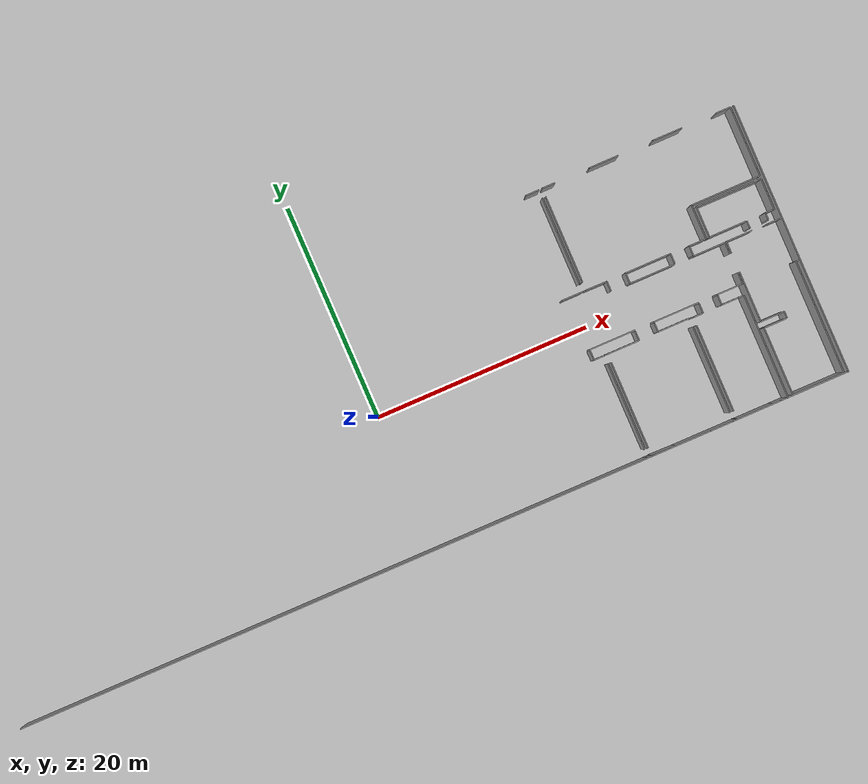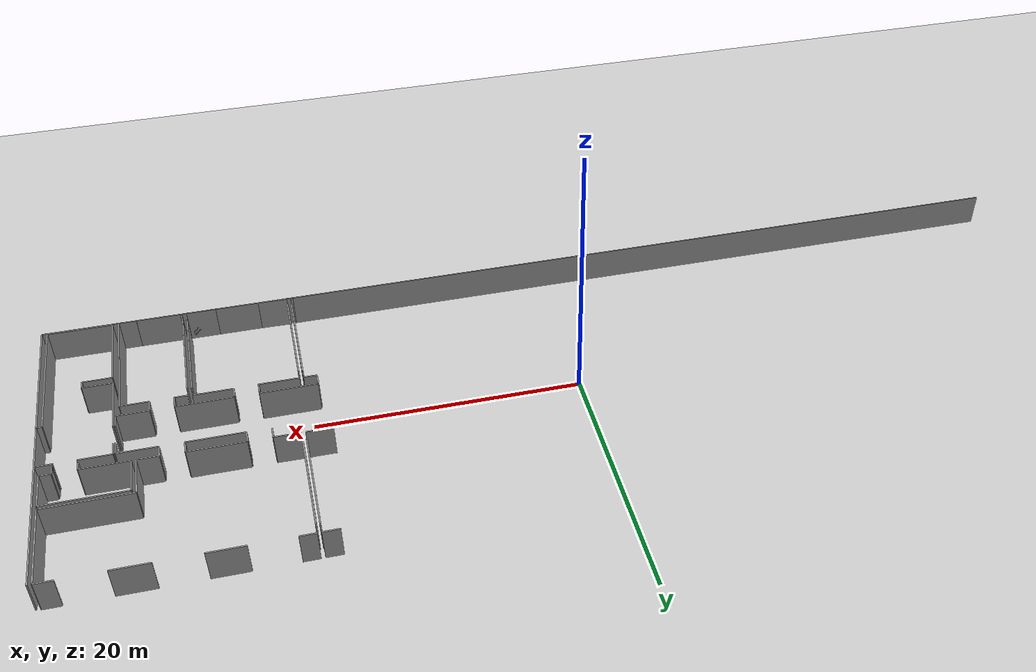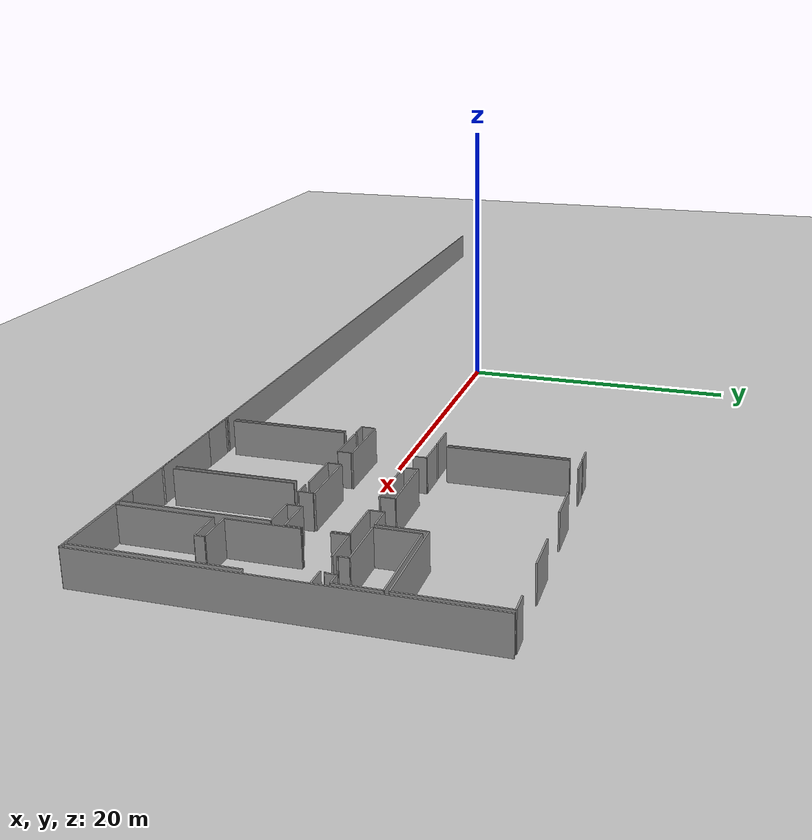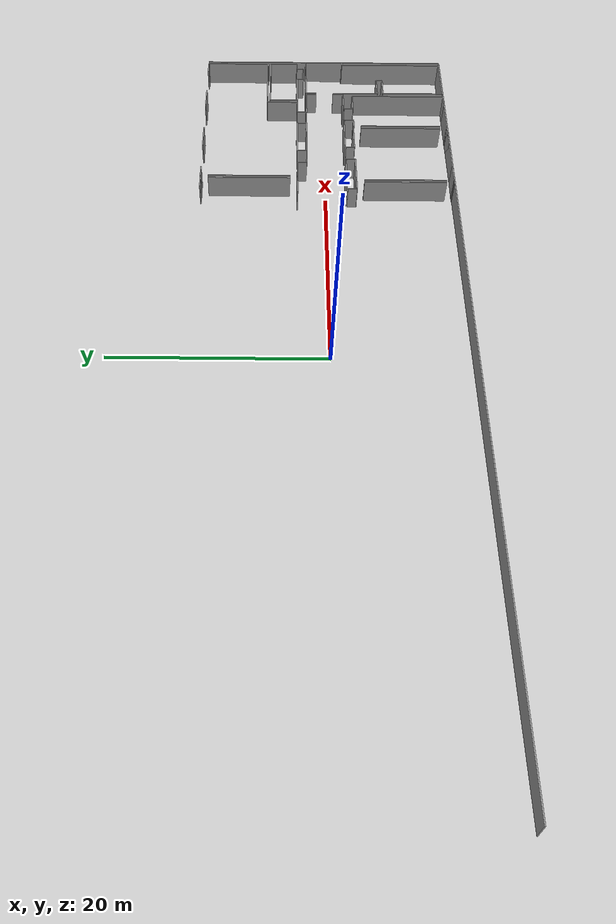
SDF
<sdf version="1.6">
 <world name="default">
  <model name="ground_plane">
   <static>1</static>
   <link name="link">
    <collision name="collision">
     <geometry><plane><normal>0 0 1</normal><size>100 100</size></plane></geometry>
     <surface><friction><ode><mu>100</mu><mu2>50</mu2></ode></friction></surface>
    </collision>
    <visual name="visual">
     <cast_shadows>0</cast_shadows>
     <geometry><plane><normal>0 0 1</normal><size>100 100</size></plane></geometry>
     <material>
      <script><uri>file://media/materials/scripts/gazebo.material</uri><name>Gazebo/Grey</name></script>
     </material>
    </visual>
   </link>
  </model>
  <model name="50052751">
   <static>1</static>
   <link name="Wall_132">
    <collision name="Wall_132_Collision">
     <geometry><box><size>1.25529382808 0.1 2.5</size></box></geometry>
     <pose>0.627646914038 0 1.25 0 0 0</pose>
    </collision>
    <visual name="Wall_132_Visual">
     <pose>0.627646914038 0 1.25 0 0 0</pose>
     <geometry><box><size>1.25529382808 0.1 2.5</size></box></geometry>
     <material>
      <script><uri>file://media/materials/scripts/gazebo.material</uri><name>Gazebo/Grey</name></script>
      <ambient>1 1 1 1</ambient>
     </material>
    </visual>
    <pose>58.4897904291 -0.0267704667196 0 0 0 0.0</pose>
   </link>
   <link name="Wall_133">
    <collision name="Wall_133_Collision">
     <geometry><box><size>8.11056329629 0.1 2.5</size></box></geometry>
     <pose>4.05528164815 0 1.25 0 0 0</pose>
    </collision>
    <visual name="Wall_133_Visual">
     <pose>4.05528164815 0 1.25 0 0 0</pose>
     <geometry><box><size>8.11056329629 0.1 2.5</size></box></geometry>
     <material>
      <script><uri>file://media/materials/scripts/gazebo.material</uri><name>Gazebo/Grey</name></script>
      <ambient>1 1 1 1</ambient>
     </material>
    </visual>
    <pose>59.7450842572 -0.771141690625 0 0 0 -1.57079632679</pose>
   </link>
   <link name="Wall_134">
    <collision name="Wall_134_Collision">
     <geometry><box><size>1.979365172 0.1 2.5</size></box></geometry>
     <pose>0.989682586002 0 1.25 0 0 0</pose>
    </collision>
    <visual name="Wall_134_Visual">
     <pose>0.989682586002 0 1.25 0 0 0</pose>
     <geometry><box><size>1.979365172 0.1 2.5</size></box></geometry>
     <material>
      <script><uri>file://media/materials/scripts/gazebo.material</uri><name>Gazebo/Grey</name></script>
      <ambient>1 1 1 1</ambient>
     </material>
    </visual>
    <pose>59.7450842572 -9.62214310908 0 0 0 3.14159265359</pose>
   </link>
   <link name="Wall_138">
    <collision name="Wall_138_Collision">
     <geometry><box><size>8.11195891304 0.1 2.5</size></box></geometry>
     <pose>4.05597945652 0 1.25 0 0 0</pose>
    </collision>
    <visual name="Wall_138_Visual">
     <pose>4.05597945652 0 1.25 0 0 0</pose>
     <geometry><box><size>8.11195891304 0.1 2.5</size></box></geometry>
     <material>
      <script><uri>file://media/materials/scripts/gazebo.material</uri><name>Gazebo/Grey</name></script>
      <ambient>1 1 1 1</ambient>
     </material>
    </visual>
    <pose>60.0289019541 -8.88310060367 0 0 0 1.57079632679</pose>
   </link>
   <link name="Wall_139">
    <collision name="Wall_139_Collision">
     <geometry><box><size>1.20479787663 0.1 2.5</size></box></geometry>
     <pose>0.602398938316 0 1.25 0 0 0</pose>
    </collision>
    <visual name="Wall_139_Visual">
     <pose>0.602398938316 0 1.25 0 0 0</pose>
     <geometry><box><size>1.20479787663 0.1 2.5</size></box></geometry>
     <material>
      <script><uri>file://media/materials/scripts/gazebo.material</uri><name>Gazebo/Grey</name></script>
      <ambient>1 1 1 1</ambient>
     </material>
    </visual>
    <pose>60.0289019541 -0.0142099159839 0 0 0 0.0</pose>
   </link>
   <link name="Wall_140">
    <collision name="Wall_140_Collision">
     <geometry><box><size>2.70635462368 0.1 2.5</size></box></geometry>
     <pose>1.35317731184 0 1.25 0 0 0</pose>
    </collision>
    <visual name="Wall_140_Visual">
     <pose>1.35317731184 0 1.25 0 0 0</pose>
     <geometry><box><size>2.70635462368 0.1 2.5</size></box></geometry>
     <material>
      <script><uri>file://media/materials/scripts/gazebo.material</uri><name>Gazebo/Grey</name></script>
      <ambient>1 1 1 1</ambient>
     </material>
    </visual>
    <pose>64.5012192615 -0.0142099159839 0 0 0 0.0</pose>
   </link>
   <link name="Wall_141">
    <collision name="Wall_141_Collision">
     <geometry><box><size>2.75329809613 0.1 2.5</size></box></geometry>
     <pose>1.37664904806 0 1.25 0 0 0</pose>
    </collision>
    <visual name="Wall_141_Visual">
     <pose>1.37664904806 0 1.25 0 0 0</pose>
     <geometry><box><size>2.75329809613 0.1 2.5</size></box></geometry>
     <material>
      <script><uri>file://media/materials/scripts/gazebo.material</uri><name>Gazebo/Grey</name></script>
      <ambient>1 1 1 1</ambient>
     </material>
    </visual>
    <pose>70.4693839748 -0.0142099159839 0 0 0 0.0</pose>
   </link>
   <link name="Wall_142">
    <collision name="Wall_142_Collision">
     <geometry><box><size>1.323805923 0.1 2.5</size></box></geometry>
     <pose>0.661902961499 0 1.25 0 0 0</pose>
    </collision>
    <visual name="Wall_142_Visual">
     <pose>0.661902961499 0 1.25 0 0 0</pose>
     <geometry><box><size>1.323805923 0.1 2.5</size></box></geometry>
     <material>
      <script><uri>file://media/materials/scripts/gazebo.material</uri><name>Gazebo/Grey</name></script>
      <ambient>1 1 1 1</ambient>
     </material>
    </visual>
    <pose>76.4653341487 -0.0142099159839 0 0 0 0.0</pose>
   </link>
   <link name="Wall_143">
    <collision name="Wall_143_Collision">
     <geometry><box><size>6.46601926966 0.1 2.5</size></box></geometry>
     <pose>3.23300963483 0 1.25 0 0 0</pose>
    </collision>
    <visual name="Wall_143_Visual">
     <pose>3.23300963483 0 1.25 0 0 0</pose>
     <geometry><box><size>6.46601926966 0.1 2.5</size></box></geometry>
     <material>
      <script><uri>file://media/materials/scripts/gazebo.material</uri><name>Gazebo/Grey</name></script>
      <ambient>1 1 1 1</ambient>
     </material>
    </visual>
    <pose>77.7891400717 -0.0142099159839 0 0 0 -1.57079632679</pose>
   </link>
   <link name="Wall_144">
    <collision name="Wall_144_Collision">
     <geometry><box><size>6.44965249143 0.1 2.5</size></box></geometry>
     <pose>3.22482624571 0 1.25 0 0 0</pose>
    </collision>
    <visual name="Wall_144_Visual">
     <pose>3.22482624571 0 1.25 0 0 0</pose>
     <geometry><box><size>6.44965249143 0.1 2.5</size></box></geometry>
     <material>
      <script><uri>file://media/materials/scripts/gazebo.material</uri><name>Gazebo/Grey</name></script>
      <ambient>1 1 1 1</ambient>
     </material>
    </visual>
    <pose>77.7891400717 -6.48022918564 0 0 0 3.14159265359</pose>
   </link>
   <link name="Wall_145">
    <collision name="Wall_145_Collision">
     <geometry><box><size>3.16538565966 0.1 2.5</size></box></geometry>
     <pose>1.58269282983 0 1.25 0 0 0</pose>
    </collision>
    <visual name="Wall_145_Visual">
     <pose>1.58269282983 0 1.25 0 0 0</pose>
     <geometry><box><size>3.16538565966 0.1 2.5</size></box></geometry>
     <material>
      <script><uri>file://media/materials/scripts/gazebo.material</uri><name>Gazebo/Grey</name></script>
      <ambient>1 1 1 1</ambient>
     </material>
    </visual>
    <pose>71.3394875803 -6.48022918564 0 0 0 -1.57079632679</pose>
   </link>
   <link name="Wall_146">
    <collision name="Wall_146_Collision">
     <geometry><box><size>1.58009190771 0.1 2.5</size></box></geometry>
     <pose>0.790045953853 0 1.25 0 0 0</pose>
    </collision>
    <visual name="Wall_146_Visual">
     <pose>0.790045953853 0 1.25 0 0 0</pose>
     <geometry><box><size>1.58009190771 0.1 2.5</size></box></geometry>
     <material>
      <script><uri>file://media/materials/scripts/gazebo.material</uri><name>Gazebo/Grey</name></script>
      <ambient>1 1 1 1</ambient>
     </material>
    </visual>
    <pose>71.3394875803 -9.6456148453 0 0 0 3.14159265359</pose>
   </link>
   <link name="Wall_147">
    <collision name="Wall_147_Collision">
     <geometry><box><size>0.86350614452 0.1 2.5</size></box></geometry>
     <pose>0.43175307226 0 1.25 0 0 0</pose>
    </collision>
    <visual name="Wall_147_Visual">
     <pose>0.43175307226 0 1.25 0 0 0</pose>
     <geometry><box><size>0.86350614452 0.1 2.5</size></box></geometry>
     <material>
      <script><uri>file://media/materials/scripts/gazebo.material</uri><name>Gazebo/Grey</name></script>
      <ambient>1 1 1 1</ambient>
     </material>
    </visual>
    <pose>69.7593956726 -9.6456148453 0 0 0 -1.57079632679</pose>
   </link>
   <link name="Wall_148">
    <collision name="Wall_148_Collision">
     <geometry><box><size>0.895224706984 0.1 2.5</size></box></geometry>
     <pose>0.447612353492 0 1.25 0 0 0</pose>
    </collision>
    <visual name="Wall_148_Visual">
     <pose>0.447612353492 0 1.25 0 0 0</pose>
     <geometry><box><size>0.895224706984 0.1 2.5</size></box></geometry>
     <material>
      <script><uri>file://media/materials/scripts/gazebo.material</uri><name>Gazebo/Grey</name></script>
      <ambient>1 1 1 1</ambient>
     </material>
    </visual>
    <pose>68.0037098031 -10.5091209898 0 0 0 1.57079632679</pose>
   </link>
   <link name="Wall_149">
    <collision name="Wall_149_Collision">
     <geometry><box><size>4.23645807694 0.1 2.5</size></box></geometry>
     <pose>2.11822903847 0 1.25 0 0 0</pose>
    </collision>
    <visual name="Wall_149_Visual">
     <pose>2.11822903847 0 1.25 0 0 0</pose>
     <geometry><box><size>4.23645807694 0.1 2.5</size></box></geometry>
     <material>
      <script><uri>file://media/materials/scripts/gazebo.material</uri><name>Gazebo/Grey</name></script>
      <ambient>1 1 1 1</ambient>
     </material>
    </visual>
    <pose>68.0037098031 -9.61389628284 0 0 0 3.14159265359</pose>
   </link>
   <link name="Wall_150">
    <collision name="Wall_150_Collision">
     <geometry><box><size>0.935697592688 0.1 2.5</size></box></geometry>
     <pose>0.467848796344 0 1.25 0 0 0</pose>
    </collision>
    <visual name="Wall_150_Visual">
     <pose>0.467848796344 0 1.25 0 0 0</pose>
     <geometry><box><size>0.935697592688 0.1 2.5</size></box></geometry>
     <material>
      <script><uri>file://media/materials/scripts/gazebo.material</uri><name>Gazebo/Grey</name></script>
      <ambient>1 1 1 1</ambient>
     </material>
    </visual>
    <pose>63.7672517261 -9.61389628284 0 0 0 -1.57079632679</pose>
   </link>
   <link name="Wall_151">
    <collision name="Wall_151_Collision">
     <geometry><box><size>0.914002095963 0.1 2.5</size></box></geometry>
     <pose>0.457001047981 0 1.25 0 0 0</pose>
    </collision>
    <visual name="Wall_151_Visual">
     <pose>0.457001047981 0 1.25 0 0 0</pose>
     <geometry><box><size>0.914002095963 0.1 2.5</size></box></geometry>
     <material>
      <script><uri>file://media/materials/scripts/gazebo.material</uri><name>Gazebo/Grey</name></script>
      <ambient>1 1 1 1</ambient>
     </material>
    </visual>
    <pose>61.9899972341 -10.5495938755 0 0 0 1.57079632679</pose>
   </link>
   <link name="Wall_152">
    <collision name="Wall_152_Collision">
     <geometry><box><size>1.96128322253 0.1 2.5</size></box></geometry>
     <pose>0.980641611267 0 1.25 0 0 0</pose>
    </collision>
    <visual name="Wall_152_Visual">
     <pose>0.980641611267 0 1.25 0 0 0</pose>
     <geometry><box><size>1.96128322253 0.1 2.5</size></box></geometry>
     <material>
      <script><uri>file://media/materials/scripts/gazebo.material</uri><name>Gazebo/Grey</name></script>
      <ambient>1 1 1 1</ambient>
     </material>
    </visual>
    <pose>61.9899972341 -9.63559177956 0 0 0 3.12774867815</pose>
   </link>
   <link name="Wall_153">
    <collision name="Wall_153_Collision">
     <geometry><box><size>2.861394957 0.1 2.5</size></box></geometry>
     <pose>1.4306974785 0 1.25 0 0 0</pose>
    </collision>
    <visual name="Wall_153_Visual">
     <pose>1.4306974785 0 1.25 0 0 0</pose>
     <geometry><box><size>2.861394957 0.1 2.5</size></box></geometry>
     <material>
      <script><uri>file://media/materials/scripts/gazebo.material</uri><name>Gazebo/Grey</name></script>
      <ambient>1 1 1 1</ambient>
     </material>
    </visual>
    <pose>71.6677112647 -9.63521115681 0 0 0 1.57079632679</pose>
   </link>
   <link name="Wall_154">
    <collision name="Wall_154_Collision">
     <geometry><box><size>6.10645764557 0.1 2.5</size></box></geometry>
     <pose>3.05322882278 0 1.25 0 0 0</pose>
    </collision>
    <visual name="Wall_154_Visual">
     <pose>3.05322882278 0 1.25 0 0 0</pose>
     <geometry><box><size>6.10645764557 0.1 2.5</size></box></geometry>
     <material>
      <script><uri>file://media/materials/scripts/gazebo.material</uri><name>Gazebo/Grey</name></script>
      <ambient>1 1 1 1</ambient>
     </material>
    </visual>
    <pose>71.6677112647 -6.77381619981 0 0 0 0.0</pose>
   </link>
   <link name="Wall_155">
    <collision name="Wall_155_Collision">
     <geometry><box><size>2.84731191527 0.1 2.5</size></box></geometry>
     <pose>1.42365595763 0 1.25 0 0 0</pose>
    </collision>
    <visual name="Wall_155_Visual">
     <pose>1.42365595763 0 1.25 0 0 0</pose>
     <geometry><box><size>2.84731191527 0.1 2.5</size></box></geometry>
     <material>
      <script><uri>file://media/materials/scripts/gazebo.material</uri><name>Gazebo/Grey</name></script>
      <ambient>1 1 1 1</ambient>
     </material>
    </visual>
    <pose>77.7741689102 -6.77381619981 0 0 0 -1.57079632679</pose>
   </link>
   <link name="Wall_156">
    <collision name="Wall_156_Collision">
     <geometry><box><size>0.827473857561 0.1 2.5</size></box></geometry>
     <pose>0.41373692878 0 1.25 0 0 0</pose>
    </collision>
    <visual name="Wall_156_Visual">
     <pose>0.41373692878 0 1.25 0 0 0</pose>
     <geometry><box><size>0.827473857561 0.1 2.5</size></box></geometry>
     <material>
      <script><uri>file://media/materials/scripts/gazebo.material</uri><name>Gazebo/Grey</name></script>
      <ambient>1 1 1 1</ambient>
     </material>
    </visual>
    <pose>77.7741689102 -9.62112811508 0 0 0 3.14159265359</pose>
   </link>
   <link name="Wall_157">
    <collision name="Wall_157_Collision">
     <geometry><box><size>0.668627296741 0.1 2.5</size></box></geometry>
     <pose>0.334313648371 0 1.25 0 0 0</pose>
    </collision>
    <visual name="Wall_157_Visual">
     <pose>0.334313648371 0 1.25 0 0 0</pose>
     <geometry><box><size>0.668627296741 0.1 2.5</size></box></geometry>
     <material>
      <script><uri>file://media/materials/scripts/gazebo.material</uri><name>Gazebo/Grey</name></script>
      <ambient>1 1 1 1</ambient>
     </material>
    </visual>
    <pose>76.9466950527 -9.62112811508 0 0 0 -1.57079632679</pose>
   </link>
   <link name="Wall_158">
    <collision name="Wall_158_Collision">
     <geometry><box><size>0.0757439271641 0.1 2.5</size></box></geometry>
     <pose>0.037871963582 0 1.25 0 0 0</pose>
    </collision>
    <visual name="Wall_158_Visual">
     <pose>0.037871963582 0 1.25 0 0 0</pose>
     <geometry><box><size>0.0757439271641 0.1 2.5</size></box></geometry>
     <material>
      <script><uri>file://media/materials/scripts/gazebo.material</uri><name>Gazebo/Grey</name></script>
      <ambient>1 1 1 1</ambient>
     </material>
    </visual>
    <pose>76.9466950527 -10.2897554118 0 0 0 3.14159265359</pose>
   </link>
   <link name="Wall_159">
    <collision name="Wall_159_Collision">
     <geometry><box><size>0.0870357354012 0.1 2.5</size></box></geometry>
     <pose>0.0435178677006 0 1.25 0 0 0</pose>
    </collision>
    <visual name="Wall_159_Visual">
     <pose>0.0435178677006 0 1.25 0 0 0</pose>
     <geometry><box><size>0.0870357354012 0.1 2.5</size></box></geometry>
     <material>
      <script><uri>file://media/materials/scripts/gazebo.material</uri><name>Gazebo/Grey</name></script>
      <ambient>1 1 1 1</ambient>
     </material>
    </visual>
    <pose>75.2722087031 -10.2897554118 0 0 0 3.14159265359</pose>
   </link>
   <link name="Wall_160">
    <collision name="Wall_160_Collision">
     <geometry><box><size>0.661395464499 0.1 2.5</size></box></geometry>
     <pose>0.33069773225 0 1.25 0 0 0</pose>
    </collision>
    <visual name="Wall_160_Visual">
     <pose>0.33069773225 0 1.25 0 0 0</pose>
     <geometry><box><size>0.661395464499 0.1 2.5</size></box></geometry>
     <material>
      <script><uri>file://media/materials/scripts/gazebo.material</uri><name>Gazebo/Grey</name></script>
      <ambient>1 1 1 1</ambient>
     </material>
    </visual>
    <pose>75.1851729677 -10.2897554118 0 0 0 1.57079632679</pose>
   </link>
   <link name="Wall_161">
    <collision name="Wall_161_Collision">
     <geometry><box><size>3.51746837529 0.1 2.5</size></box></geometry>
     <pose>1.75873418765 0 1.25 0 0 0</pose>
    </collision>
    <visual name="Wall_161_Visual">
     <pose>1.75873418765 0 1.25 0 0 0</pose>
     <geometry><box><size>3.51746837529 0.1 2.5</size></box></geometry>
     <material>
      <script><uri>file://media/materials/scripts/gazebo.material</uri><name>Gazebo/Grey</name></script>
      <ambient>1 1 1 1</ambient>
     </material>
    </visual>
    <pose>75.1851729677 -9.62835994732 0 0 0 -3.13964488517</pose>
   </link>
   <link name="Wall_174">
    <collision name="Wall_174_Collision">
     <geometry><box><size>4.23645807694 0.1 2.5</size></box></geometry>
     <pose>2.11822903847 0 1.25 0 0 0</pose>
    </collision>
    <visual name="Wall_174_Visual">
     <pose>2.11822903847 0 1.25 0 0 0</pose>
     <geometry><box><size>4.23645807694 0.1 2.5</size></box></geometry>
     <material>
      <script><uri>file://media/materials/scripts/gazebo.material</uri><name>Gazebo/Grey</name></script>
      <ambient>1 1 1 1</ambient>
     </material>
    </visual>
    <pose>63.7711848279 -10.5931117432 0 0 0 0.0</pose>
   </link>
   <link name="Wall_175">
    <collision name="Wall_175_Collision">
     <geometry><box><size>2.94576633316 0.1 2.5</size></box></geometry>
     <pose>1.47288316658 0 1.25 0 0 0</pose>
    </collision>
    <visual name="Wall_175_Visual">
     <pose>1.47288316658 0 1.25 0 0 0</pose>
     <geometry><box><size>2.94576633316 0.1 2.5</size></box></geometry>
     <material>
      <script><uri>file://media/materials/scripts/gazebo.material</uri><name>Gazebo/Grey</name></script>
      <ambient>1 1 1 1</ambient>
     </material>
    </visual>
    <pose>69.7618062833 -10.5931117432 0 0 0 0.0</pose>
   </link>
   <link name="Wall_176">
    <collision name="Wall_176_Collision">
     <geometry><box><size>1.06929617779 0.1 2.5</size></box></geometry>
     <pose>0.534648088893 0 1.25 0 0 0</pose>
    </collision>
    <visual name="Wall_176_Visual">
     <pose>0.534648088893 0 1.25 0 0 0</pose>
     <geometry><box><size>1.06929617779 0.1 2.5</size></box></geometry>
     <material>
      <script><uri>file://media/materials/scripts/gazebo.material</uri><name>Gazebo/Grey</name></script>
      <ambient>1 1 1 1</ambient>
     </material>
    </visual>
    <pose>72.7075726165 -10.5931117432 0 0 0 -1.57079632679</pose>
   </link>
   <link name="Wall_177">
    <collision name="Wall_177_Collision">
     <geometry><box><size>1.06409433354 0.1 2.5</size></box></geometry>
     <pose>0.532047166771 0 1.25 0 0 0</pose>
    </collision>
    <visual name="Wall_177_Visual">
     <pose>0.532047166771 0 1.25 0 0 0</pose>
     <geometry><box><size>1.06409433354 0.1 2.5</size></box></geometry>
     <material>
      <script><uri>file://media/materials/scripts/gazebo.material</uri><name>Gazebo/Grey</name></script>
      <ambient>1 1 1 1</ambient>
     </material>
    </visual>
    <pose>72.7075726165 -13.4014732638 0 0 0 -1.57079632679</pose>
   </link>
   <link name="Wall_178">
    <collision name="Wall_178_Collision">
     <geometry><box><size>2.39728895103 0.1 2.5</size></box></geometry>
     <pose>1.19864447551 0 1.25 0 0 0</pose>
    </collision>
    <visual name="Wall_178_Visual">
     <pose>1.19864447551 0 1.25 0 0 0</pose>
     <geometry><box><size>2.39728895103 0.1 2.5</size></box></geometry>
     <material>
      <script><uri>file://media/materials/scripts/gazebo.material</uri><name>Gazebo/Grey</name></script>
      <ambient>1 1 1 1</ambient>
     </material>
    </visual>
    <pose>72.7075726165 -14.4655675973 0 0 0 3.14159265359</pose>
   </link>
   <link name="Wall_179">
    <collision name="Wall_179_Collision">
     <geometry><box><size>4.21285946647 0.1 2.5</size></box></geometry>
     <pose>2.10642973323 0 1.25 0 0 0</pose>
    </collision>
    <visual name="Wall_179_Visual">
     <pose>2.10642973323 0 1.25 0 0 0</pose>
     <geometry><box><size>4.21285946647 0.1 2.5</size></box></geometry>
     <material>
      <script><uri>file://media/materials/scripts/gazebo.material</uri><name>Gazebo/Grey</name></script>
      <ambient>1 1 1 1</ambient>
     </material>
    </visual>
    <pose>68.5561202869 -14.4655675973 0 0 0 3.14159265359</pose>
   </link>
   <link name="Wall_180">
    <collision name="Wall_180_Collision">
     <geometry><box><size>4.26906475915 0.1 2.5</size></box></geometry>
     <pose>2.13453237958 0 1.25 0 0 0</pose>
    </collision>
    <visual name="Wall_180_Visual">
     <pose>2.13453237958 0 1.25 0 0 0</pose>
     <geometry><box><size>4.26906475915 0.1 2.5</size></box></geometry>
     <material>
      <script><uri>file://media/materials/scripts/gazebo.material</uri><name>Gazebo/Grey</name></script>
      <ambient>1 1 1 1</ambient>
     </material>
    </visual>
    <pose>62.564230089 -14.4655675973 0 0 0 3.14159265359</pose>
   </link>
   <link name="Wall_194">
    <collision name="Wall_194_Collision">
     <geometry><box><size>6.25325115265 0.1 2.5</size></box></geometry>
     <pose>3.12662557633 0 1.25 0 0 0</pose>
    </collision>
    <visual name="Wall_194_Visual">
     <pose>3.12662557633 0 1.25 0 0 0</pose>
     <geometry><box><size>6.25325115265 0.1 2.5</size></box></geometry>
     <material>
      <script><uri>file://media/materials/scripts/gazebo.material</uri><name>Gazebo/Grey</name></script>
      <ambient>1 1 1 1</ambient>
     </material>
    </visual>
    <pose>72.8869728058 -24.9857266469 0 0 0 1.57079632679</pose>
   </link>
   <link name="Wall_195">
    <collision name="Wall_195_Collision">
     <geometry><box><size>2.17322902578 0.1 2.5</size></box></geometry>
     <pose>1.08661451289 0 1.25 0 0 0</pose>
    </collision>
    <visual name="Wall_195_Visual">
     <pose>1.08661451289 0 1.25 0 0 0</pose>
     <geometry><box><size>2.17322902578 0.1 2.5</size></box></geometry>
     <material>
      <script><uri>file://media/materials/scripts/gazebo.material</uri><name>Gazebo/Grey</name></script>
      <ambient>1 1 1 1</ambient>
     </material>
    </visual>
    <pose>72.8869728058 -18.7324754942 0 0 0 0.0</pose>
   </link>
   <link name="Wall_196">
    <collision name="Wall_196_Collision">
     <geometry><box><size>0.621683824294 0.1 2.5</size></box></geometry>
     <pose>0.310841912147 0 1.25 0 0 0</pose>
    </collision>
    <visual name="Wall_196_Visual">
     <pose>0.310841912147 0 1.25 0 0 0</pose>
     <geometry><box><size>0.621683824294 0.1 2.5</size></box></geometry>
     <material>
      <script><uri>file://media/materials/scripts/gazebo.material</uri><name>Gazebo/Grey</name></script>
      <ambient>1 1 1 1</ambient>
     </material>
    </visual>
    <pose>75.0602018316 -18.7324754942 0 0 0 1.57079632679</pose>
   </link>
   <link name="Wall_197">
    <collision name="Wall_197_Collision">
     <geometry><box><size>2.20761194749 0.1 2.5</size></box></geometry>
     <pose>1.10380597375 0 1.25 0 0 0</pose>
    </collision>
    <visual name="Wall_197_Visual">
     <pose>1.10380597375 0 1.25 0 0 0</pose>
     <geometry><box><size>2.20761194749 0.1 2.5</size></box></geometry>
     <material>
      <script><uri>file://media/materials/scripts/gazebo.material</uri><name>Gazebo/Grey</name></script>
      <ambient>1 1 1 1</ambient>
     </material>
    </visual>
    <pose>75.0602018316 -18.1107916699 0 0 0 3.14159265359</pose>
   </link>
   <link name="Wall_198">
    <collision name="Wall_198_Collision">
     <geometry><box><size>4.69485474167 0.1 2.5</size></box></geometry>
     <pose>2.34742737084 0 1.25 0 0 0</pose>
    </collision>
    <visual name="Wall_198_Visual">
     <pose>2.34742737084 0 1.25 0 0 0</pose>
     <geometry><box><size>4.69485474167 0.1 2.5</size></box></geometry>
     <material>
      <script><uri>file://media/materials/scripts/gazebo.material</uri><name>Gazebo/Grey</name></script>
      <ambient>1 1 1 1</ambient>
     </material>
    </visual>
    <pose>72.8525898841 -18.1107916699 0 0 0 1.57079632679</pose>
   </link>
   <link name="Wall_199">
    <collision name="Wall_199_Collision">
     <geometry><box><size>1.07716238128 0.1 2.5</size></box></geometry>
     <pose>0.538581190639 0 1.25 0 0 0</pose>
    </collision>
    <visual name="Wall_199_Visual">
     <pose>0.538581190639 0 1.25 0 0 0</pose>
     <geometry><box><size>1.07716238128 0.1 2.5</size></box></geometry>
     <material>
      <script><uri>file://media/materials/scripts/gazebo.material</uri><name>Gazebo/Grey</name></script>
      <ambient>1 1 1 1</ambient>
     </material>
    </visual>
    <pose>72.8525898841 -11.65073549 0 0 0 1.57079632679</pose>
   </link>
   <link name="Wall_200">
    <collision name="Wall_200_Collision">
     <geometry><box><size>2.41619321426 0.1 2.5</size></box></geometry>
     <pose>1.20809660713 0 1.25 0 0 0</pose>
    </collision>
    <visual name="Wall_200_Visual">
     <pose>1.20809660713 0 1.25 0 0 0</pose>
     <geometry><box><size>2.41619321426 0.1 2.5</size></box></geometry>
     <material>
      <script><uri>file://media/materials/scripts/gazebo.material</uri><name>Gazebo/Grey</name></script>
      <ambient>1 1 1 1</ambient>
     </material>
    </visual>
    <pose>72.8525898841 -10.5735731087 0 0 0 0.0</pose>
   </link>
   <link name="Wall_201">
    <collision name="Wall_201_Collision">
     <geometry><box><size>1.25440570833 0.1 2.5</size></box></geometry>
     <pose>0.627202854163 0 1.25 0 0 0</pose>
    </collision>
    <visual name="Wall_201_Visual">
     <pose>0.627202854163 0 1.25 0 0 0</pose>
     <geometry><box><size>1.25440570833 0.1 2.5</size></box></geometry>
     <material>
      <script><uri>file://media/materials/scripts/gazebo.material</uri><name>Gazebo/Grey</name></script>
      <ambient>1 1 1 1</ambient>
     </material>
    </visual>
    <pose>76.8476062635 -10.5735731087 0 0 0 0.0</pose>
   </link>
   <link name="Wall_202">
    <collision name="Wall_202_Collision">
     <geometry><box><size>0.397116402049 0.1 2.5</size></box></geometry>
     <pose>0.198558201025 0 1.25 0 0 0</pose>
    </collision>
    <visual name="Wall_202_Visual">
     <pose>0.198558201025 0 1.25 0 0 0</pose>
     <geometry><box><size>0.397116402049 0.1 2.5</size></box></geometry>
     <material>
      <script><uri>file://media/materials/scripts/gazebo.material</uri><name>Gazebo/Grey</name></script>
      <ambient>1 1 1 1</ambient>
     </material>
    </visual>
    <pose>78.1020119719 -14.5221535128 0 0 0 3.14159265359</pose>
   </link>
   <link name="Wall_203">
    <collision name="Wall_203_Collision">
     <geometry><box><size>10.4760068106 0.1 2.5</size></box></geometry>
     <pose>5.2380034053 0 1.25 0 0 0</pose>
    </collision>
    <visual name="Wall_203_Visual">
     <pose>5.2380034053 0 1.25 0 0 0</pose>
     <geometry><box><size>10.4760068106 0.1 2.5</size></box></geometry>
     <material>
      <script><uri>file://media/materials/scripts/gazebo.material</uri><name>Gazebo/Grey</name></script>
      <ambient>1 1 1 1</ambient>
     </material>
    </visual>
    <pose>77.7048955698 -14.5221535128 0 0 0 -1.57079632679</pose>
   </link>
   <link name="Wall_204">
    <collision name="Wall_204_Collision">
     <geometry><box><size>4.81793880788 0.1 2.5</size></box></geometry>
     <pose>2.40896940394 0 1.25 0 0 0</pose>
    </collision>
    <visual name="Wall_204_Visual">
     <pose>2.40896940394 0 1.25 0 0 0</pose>
     <geometry><box><size>4.81793880788 0.1 2.5</size></box></geometry>
     <material>
      <script><uri>file://media/materials/scripts/gazebo.material</uri><name>Gazebo/Grey</name></script>
      <ambient>1 1 1 1</ambient>
     </material>
    </visual>
    <pose>77.7048955698 -24.9981603234 0 0 0 3.1390119462</pose>
   </link>
   <link name="Wall_205">
    <collision name="Wall_205_Collision">
     <geometry><box><size>8.11398890104 0.1 2.5</size></box></geometry>
     <pose>4.05699445052 0 1.25 0 0 0</pose>
    </collision>
    <visual name="Wall_205_Visual">
     <pose>4.05699445052 0 1.25 0 0 0</pose>
     <geometry><box><size>8.11398890104 0.1 2.5</size></box></geometry>
     <material>
      <script><uri>file://media/materials/scripts/gazebo.material</uri><name>Gazebo/Grey</name></script>
      <ambient>1 1 1 1</ambient>
     </material>
    </visual>
    <pose>67.6105265028 -24.3141812424 0 0 0 1.57079632679</pose>
   </link>
   <link name="Wall_206">
    <collision name="Wall_206_Collision">
     <geometry><box><size>0.946608778176 0.1 2.5</size></box></geometry>
     <pose>0.473304389088 0 1.25 0 0 0</pose>
    </collision>
    <visual name="Wall_206_Visual">
     <pose>0.473304389088 0 1.25 0 0 0</pose>
     <geometry><box><size>0.946608778176 0.1 2.5</size></box></geometry>
     <material>
      <script><uri>file://media/materials/scripts/gazebo.material</uri><name>Gazebo/Grey</name></script>
      <ambient>1 1 1 1</ambient>
     </material>
    </visual>
    <pose>67.6105265028 -15.4559479917 0 0 0 0.0</pose>
   </link>
   <link name="Wall_207">
    <collision name="Wall_207_Collision">
     <geometry><box><size>0.908419628969 0.1 2.5</size></box></geometry>
     <pose>0.454209814484 0 1.25 0 0 0</pose>
    </collision>
    <visual name="Wall_207_Visual">
     <pose>0.454209814484 0 1.25 0 0 0</pose>
     <geometry><box><size>0.908419628969 0.1 2.5</size></box></geometry>
     <material>
      <script><uri>file://media/materials/scripts/gazebo.material</uri><name>Gazebo/Grey</name></script>
      <ambient>1 1 1 1</ambient>
     </material>
    </visual>
    <pose>68.5571352809 -15.4559479917 0 0 0 1.57079632679</pose>
   </link>
   <link name="Wall_208">
    <collision name="Wall_208_Collision">
     <geometry><box><size>0.892560347737 0.1 2.5</size></box></geometry>
     <pose>0.446280173868 0 1.25 0 0 0</pose>
    </collision>
    <visual name="Wall_208_Visual">
     <pose>0.446280173868 0 1.25 0 0 0</pose>
     <geometry><box><size>0.892560347737 0.1 2.5</size></box></geometry>
     <material>
      <script><uri>file://media/materials/scripts/gazebo.material</uri><name>Gazebo/Grey</name></script>
      <ambient>1 1 1 1</ambient>
     </material>
    </visual>
    <pose>70.3158661324 -14.5475283627 0 0 0 -1.57079632679</pose>
   </link>
   <link name="Wall_209">
    <collision name="Wall_209_Collision">
     <geometry><box><size>2.09139513463 0.1 2.5</size></box></geometry>
     <pose>1.04569756731 0 1.25 0 0 0</pose>
    </collision>
    <visual name="Wall_209_Visual">
     <pose>1.04569756731 0 1.25 0 0 0</pose>
     <geometry><box><size>2.09139513463 0.1 2.5</size></box></geometry>
     <material>
      <script><uri>file://media/materials/scripts/gazebo.material</uri><name>Gazebo/Grey</name></script>
      <ambient>1 1 1 1</ambient>
     </material>
    </visual>
    <pose>70.3158661324 -15.4400887105 0 0 0 0.0</pose>
   </link>
   <link name="Wall_210">
    <collision name="Wall_210_Collision">
     <geometry><box><size>9.63000931257 0.1 2.5</size></box></geometry>
     <pose>4.81500465628 0 1.25 0 0 0</pose>
    </collision>
    <visual name="Wall_210_Visual">
     <pose>4.81500465628 0 1.25 0 0 0</pose>
     <geometry><box><size>9.63000931257 0.1 2.5</size></box></geometry>
     <material>
      <script><uri>file://media/materials/scripts/gazebo.material</uri><name>Gazebo/Grey</name></script>
      <ambient>1 1 1 1</ambient>
     </material>
    </visual>
    <pose>72.4072612671 -15.4400887105 0 0 0 -1.57079632679</pose>
   </link>
   <link name="Wall_211">
    <collision name="Wall_211_Collision">
     <geometry><box><size>1.33256024624 0.1 2.5</size></box></geometry>
     <pose>0.666280123119 0 1.25 0 0 0</pose>
    </collision>
    <visual name="Wall_211_Visual">
     <pose>0.666280123119 0 1.25 0 0 0</pose>
     <geometry><box><size>1.33256024624 0.1 2.5</size></box></geometry>
     <material>
      <script><uri>file://media/materials/scripts/gazebo.material</uri><name>Gazebo/Grey</name></script>
      <ambient>1 1 1 1</ambient>
     </material>
    </visual>
    <pose>72.4072612671 -25.070098023 0 0 0 3.14159265359</pose>
   </link>
   <link name="Wall_212">
    <collision name="Wall_212_Collision">
     <geometry><box><size>0.147919760053 0.1 2.5</size></box></geometry>
     <pose>0.0739598800263 0 1.25 0 0 0</pose>
    </collision>
    <visual name="Wall_212_Visual">
     <pose>0.0739598800263 0 1.25 0 0 0</pose>
     <geometry><box><size>0.147919760053 0.1 2.5</size></box></geometry>
     <material>
      <script><uri>file://media/materials/scripts/gazebo.material</uri><name>Gazebo/Grey</name></script>
      <ambient>1 1 1 1</ambient>
     </material>
    </visual>
    <pose>67.7538944051 -25.070098023 0 0 0 2.89286946875</pose>
   </link>
   <link name="Wall_213">
    <collision name="Wall_213_Collision">
     <geometry><box><size>8.09191278157 0.1 2.5</size></box></geometry>
     <pose>4.04595639078 0 1.25 0 0 0</pose>
    </collision>
    <visual name="Wall_213_Visual">
     <pose>4.04595639078 0 1.25 0 0 0</pose>
     <geometry><box><size>8.09191278157 0.1 2.5</size></box></geometry>
     <material>
      <script><uri>file://media/materials/scripts/gazebo.material</uri><name>Gazebo/Grey</name></script>
      <ambient>1 1 1 1</ambient>
     </material>
    </visual>
    <pose>59.5561684992 -24.3091062724 0 0 0 1.57079632679</pose>
   </link>
   <link name="Wall_214">
    <collision name="Wall_214_Collision">
     <geometry><box><size>2.97938800937 0.1 2.5</size></box></geometry>
     <pose>1.48969400468 0 1.25 0 0 0</pose>
    </collision>
    <visual name="Wall_214_Visual">
     <pose>1.48969400468 0 1.25 0 0 0</pose>
     <geometry><box><size>2.97938800937 0.1 2.5</size></box></geometry>
     <material>
      <script><uri>file://media/materials/scripts/gazebo.material</uri><name>Gazebo/Grey</name></script>
      <ambient>1 1 1 1</ambient>
     </material>
    </visual>
    <pose>59.5561684992 -15.4305731417 0 0 0 0.0</pose>
   </link>
   <link name="Wall_215">
    <collision name="Wall_215_Collision">
     <geometry><box><size>0.882664156248 0.1 2.5</size></box></geometry>
     <pose>0.441332078124 0 1.25 0 0 0</pose>
    </collision>
    <visual name="Wall_215_Visual">
     <pose>0.441332078124 0 1.25 0 0 0</pose>
     <geometry><box><size>0.882664156248 0.1 2.5</size></box></geometry>
     <material>
      <script><uri>file://media/materials/scripts/gazebo.material</uri><name>Gazebo/Grey</name></script>
      <ambient>1 1 1 1</ambient>
     </material>
    </visual>
    <pose>62.5355565085 -15.4305731417 0 0 0 1.57079632679</pose>
   </link>
   <link name="Wall_216">
    <collision name="Wall_216_Collision">
     <geometry><box><size>0.843460013043 0.1 2.5</size></box></geometry>
     <pose>0.421730006521 0 1.25 0 0 0</pose>
    </collision>
    <visual name="Wall_216_Visual">
     <pose>0.421730006521 0 1.25 0 0 0</pose>
     <geometry><box><size>0.843460013043 0.1 2.5</size></box></geometry>
     <material>
      <script><uri>file://media/materials/scripts/gazebo.material</uri><name>Gazebo/Grey</name></script>
      <ambient>1 1 1 1</ambient>
     </material>
    </visual>
    <pose>64.33488712 -14.5479089855 0 0 0 -1.57079632679</pose>
   </link>
   <link name="Wall_217">
    <collision name="Wall_217_Collision">
     <geometry><box><size>2.94487821341 0.1 2.5</size></box></geometry>
     <pose>1.4724391067 0 1.25 0 0 0</pose>
    </collision>
    <visual name="Wall_217_Visual">
     <pose>1.4724391067 0 1.25 0 0 0</pose>
     <geometry><box><size>2.94487821341 0.1 2.5</size></box></geometry>
     <material>
      <script><uri>file://media/materials/scripts/gazebo.material</uri><name>Gazebo/Grey</name></script>
      <ambient>1 1 1 1</ambient>
     </material>
    </visual>
    <pose>64.33488712 -15.3913689985 0 0 0 0.0</pose>
   </link>
   <link name="Wall_218">
    <collision name="Wall_218_Collision">
     <geometry><box><size>8.12071323628 0.1 2.5</size></box></geometry>
     <pose>4.06035661814 0 1.25 0 0 0</pose>
    </collision>
    <visual name="Wall_218_Visual">
     <pose>4.06035661814 0 1.25 0 0 0</pose>
     <geometry><box><size>8.12071323628 0.1 2.5</size></box></geometry>
     <material>
      <script><uri>file://media/materials/scripts/gazebo.material</uri><name>Gazebo/Grey</name></script>
      <ambient>1 1 1 1</ambient>
     </material>
    </visual>
    <pose>67.2797653334 -16.1838255631 0 0 0 -1.57079632679</pose>
   </link>
   <link name="Wall_219">
    <collision name="Wall_219_Collision">
     <geometry><box><size>2.22118749223 0.1 2.5</size></box></geometry>
     <pose>1.11059374611 0 1.25 0 0 0</pose>
    </collision>
    <visual name="Wall_219_Visual">
     <pose>1.11059374611 0 1.25 0 0 0</pose>
     <geometry><box><size>2.22118749223 0.1 2.5</size></box></geometry>
     <material>
      <script><uri>file://media/materials/scripts/gazebo.material</uri><name>Gazebo/Grey</name></script>
      <ambient>1 1 1 1</ambient>
     </material>
    </visual>
    <pose>67.2797653334 -25.0720011368 0 0 0 3.14159265359</pose>
   </link>
   <link name="Wall_220">
    <collision name="Wall_220_Collision">
     <geometry><box><size>2.23156951555 0.1 2.5</size></box></geometry>
     <pose>1.11578475777 0 1.25 0 0 0</pose>
    </collision>
    <visual name="Wall_220_Visual">
     <pose>1.11578475777 0 1.25 0 0 0</pose>
     <geometry><box><size>2.23156951555 0.1 2.5</size></box></geometry>
     <material>
      <script><uri>file://media/materials/scripts/gazebo.material</uri><name>Gazebo/Grey</name></script>
      <ambient>1 1 1 1</ambient>
     </material>
    </visual>
    <pose>61.7872521829 -25.0720011368 0 0 0 3.12072562314</pose>
   </link>
   <link name="Wall_224">
    <collision name="Wall_224_Collision">
     <geometry><box><size>0.887612251993 0.1 2.5</size></box></geometry>
     <pose>0.443806125996 0 1.25 0 0 0</pose>
    </collision>
    <visual name="Wall_224_Visual">
     <pose>0.443806125996 0 1.25 0 0 0</pose>
     <geometry><box><size>0.887612251993 0.1 2.5</size></box></geometry>
     <material>
      <script><uri>file://media/materials/scripts/gazebo.material</uri><name>Gazebo/Grey</name></script>
      <ambient>1 1 1 1</ambient>
     </material>
    </visual>
    <pose>58.2813360366 -14.5487971052 0 0 0 -1.57079632679</pose>
   </link>
   <link name="Wall_225">
    <collision name="Wall_225_Collision">
     <geometry><box><size>0.976424226892 0.1 2.5</size></box></geometry>
     <pose>0.488212113446 0 1.25 0 0 0</pose>
    </collision>
    <visual name="Wall_225_Visual">
     <pose>0.488212113446 0 1.25 0 0 0</pose>
     <geometry><box><size>0.976424226892 0.1 2.5</size></box></geometry>
     <material>
      <script><uri>file://media/materials/scripts/gazebo.material</uri><name>Gazebo/Grey</name></script>
      <ambient>1 1 1 1</ambient>
     </material>
    </visual>
    <pose>58.2813360366 -15.4364093572 0 0 0 0.0</pose>
   </link>
   <link name="Wall_226">
    <collision name="Wall_226_Collision">
     <geometry><box><size>8.10155522455 0.1 2.5</size></box></geometry>
     <pose>4.05077761228 0 1.25 0 0 0</pose>
    </collision>
    <visual name="Wall_226_Visual">
     <pose>4.05077761228 0 1.25 0 0 0</pose>
     <geometry><box><size>8.10155522455 0.1 2.5</size></box></geometry>
     <material>
      <script><uri>file://media/materials/scripts/gazebo.material</uri><name>Gazebo/Grey</name></script>
      <ambient>1 1 1 1</ambient>
     </material>
    </visual>
    <pose>59.2577602635 -16.1987967246 0 0 0 -1.57079632679</pose>
   </link>
   <link name="Wall_227">
    <collision name="Wall_227_Collision">
     <geometry><box><size>0.175593961801 0.1 2.5</size></box></geometry>
     <pose>0.0877969809003 0 1.25 0 0 0</pose>
    </collision>
    <visual name="Wall_227_Visual">
     <pose>0.0877969809003 0 1.25 0 0 0</pose>
     <geometry><box><size>0.175593961801 0.1 2.5</size></box></geometry>
     <material>
      <script><uri>file://media/materials/scripts/gazebo.material</uri><name>Gazebo/Grey</name></script>
      <ambient>1 1 1 1</ambient>
     </material>
    </visual>
    <pose>59.2577602635 -25.0463725383 0 0 0 3.14159265359</pose>
   </link>
   <link name="Wall_264">
    <collision name="Wall_264_Collision">
     <geometry><box><size>25.0720011368 0.1 2.5</size></box></geometry>
     <pose>12.5360005684 0 1.25 0 0 0</pose>
    </collision>
    <visual name="Wall_264_Visual">
     <pose>12.5360005684 0 1.25 0 0 0</pose>
     <geometry><box><size>25.0720011368 0.1 2.5</size></box></geometry>
     <material>
      <script><uri>file://media/materials/scripts/gazebo.material</uri><name>Gazebo/Grey</name></script>
      <ambient>1 1 1 1</ambient>
     </material>
    </visual>
    <pose>78.1020119719 -25.0720011368 0 0 0 1.57079632679</pose>
   </link>
   <link name="Wall_265">
    <collision name="Wall_265_Collision">
     <geometry><box><size>78.1020119719 0.1 2.5</size></box></geometry>
     <pose>39.0510059859 0 1.25 0 0 0</pose>
    </collision>
    <visual name="Wall_265_Visual">
     <pose>39.0510059859 0 1.25 0 0 0</pose>
     <geometry><box><size>78.1020119719 0.1 2.5</size></box></geometry>
     <material>
      <script><uri>file://media/materials/scripts/gazebo.material</uri><name>Gazebo/Grey</name></script>
      <ambient>1 1 1 1</ambient>
     </material>
    </visual>
    <pose>78.1020119719 -25.0720011368 0 0 0 3.14159265359</pose>
   </link>
   <pose>-39.05 12.5220011368 0 0 0 0</pose>
  </model>
 </world>
</sdf>
